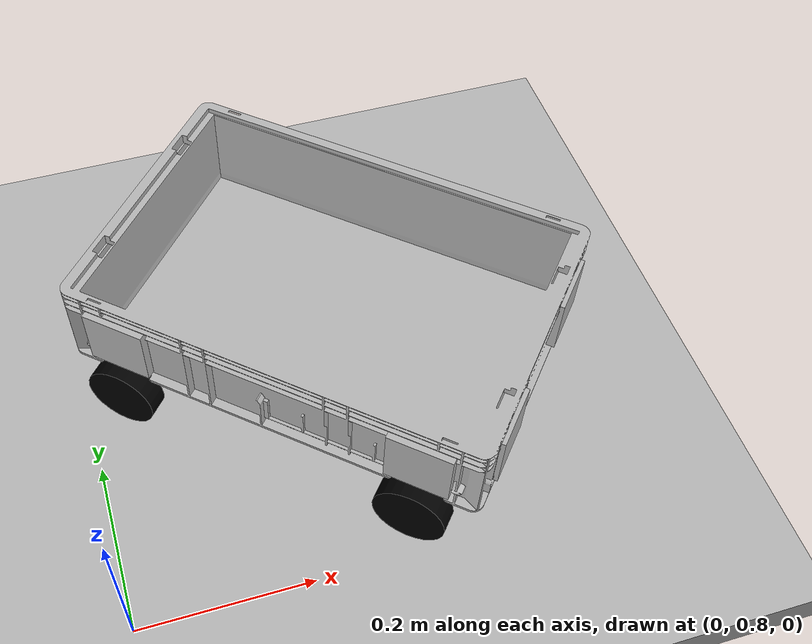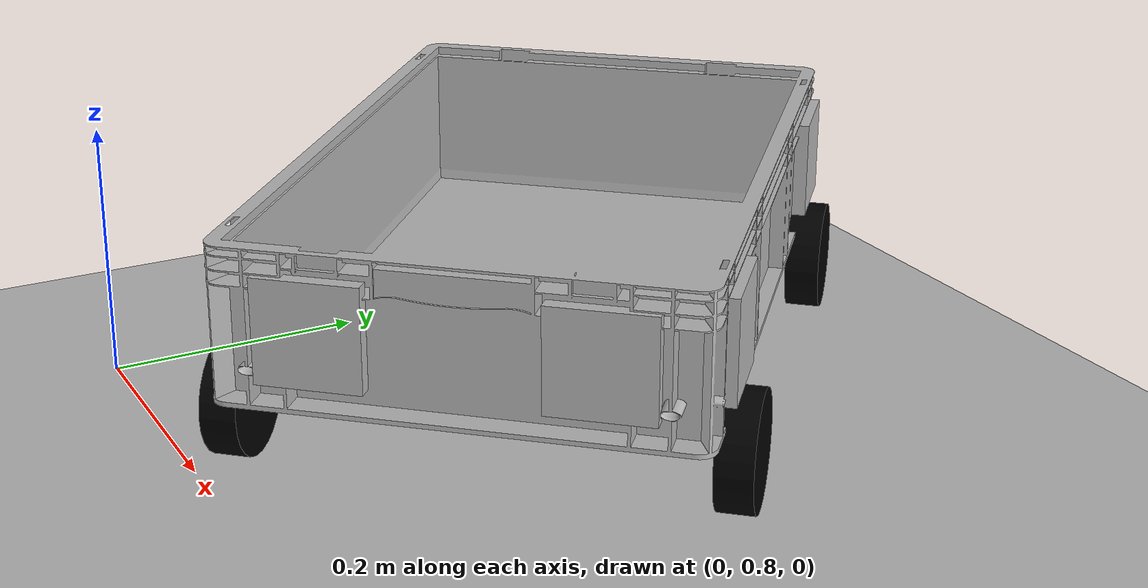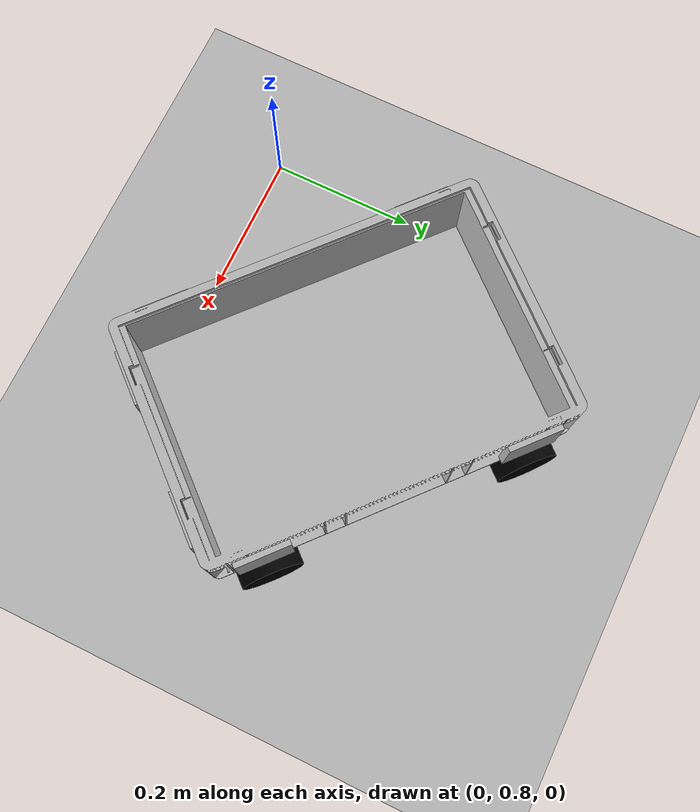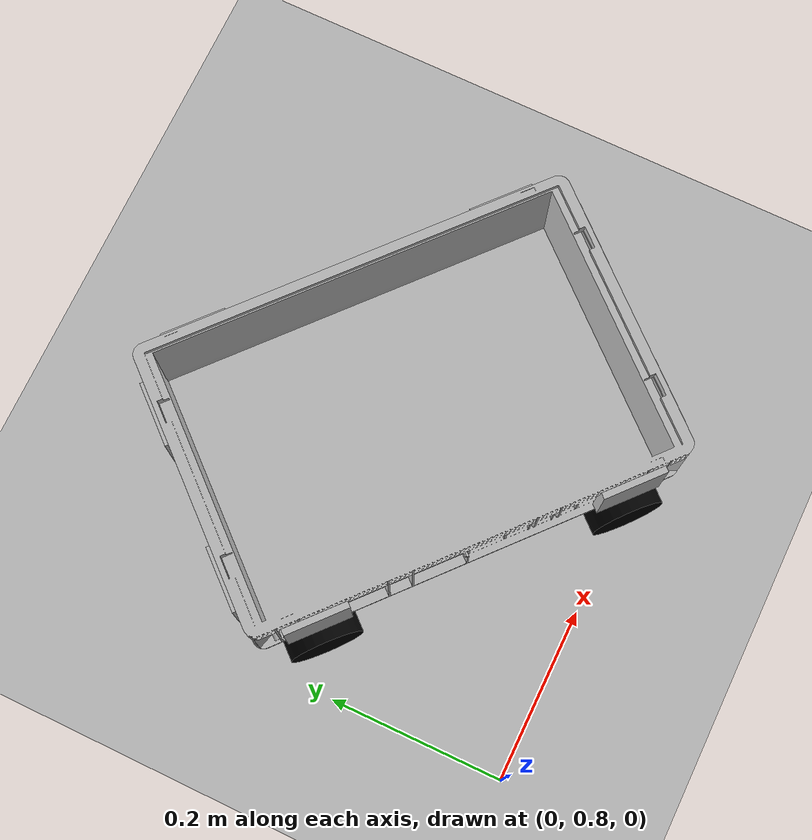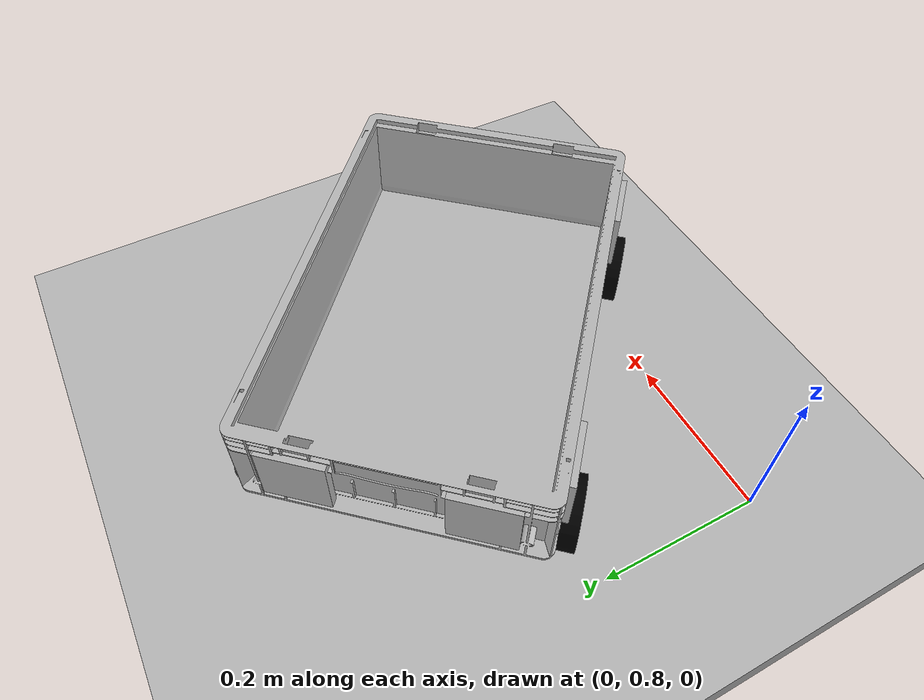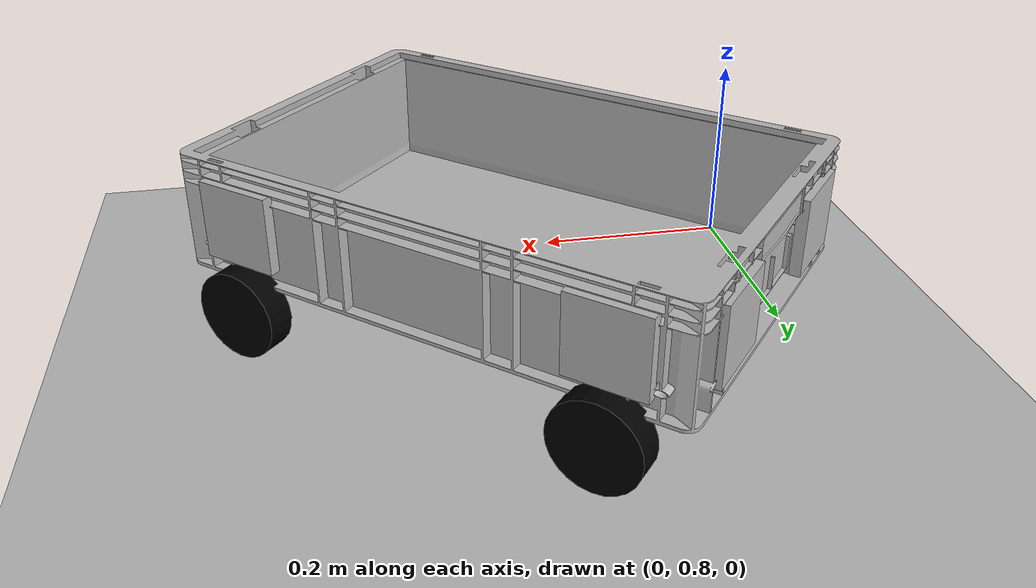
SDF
<sdf version="1.7">
 <world name="default">
  <light name="sun" type="directional">
   <pose>0 0 10 0 -0 0</pose>
   <diffuse>0.8 0.8 0.8 1</diffuse>
   <specular>0.2 0.2 0.2 1</specular>
   <attenuation>
    <range>1000</range>
    <constant>0.9</constant>
    <linear>0.01</linear>
    <quadratic>0.001</quadratic>
   </attenuation>
   <direction>-0.5 0.1 -0.9</direction>
   <spot><inner_angle>0</inner_angle><outer_angle>0</outer_angle><falloff>0</falloff></spot>
  </light>
  <model name="ground_plane">
   <static>1</static>
   <link name="link">
    <collision name="collision">
     <geometry><plane><normal>0 0 1</normal><size>100 100</size></plane></geometry>
     <surface><friction><ode><mu>100</mu><mu2>50</mu2></ode></friction></surface>
    </collision>
    <visual name="visual">
     <cast_shadows>0</cast_shadows>
     <geometry><plane><normal>0 0 1</normal><size>100 100</size></plane></geometry>
     <material>
      <script><uri>file://media/materials/scripts/gazebo.material</uri><name>Gazebo/Grey</name></script>
     </material>
    </visual>
   </link>
  </model>
  <gravity>0 0 -9.8</gravity>
  <magnetic_field>6e-06 2.3e-05 -4.2e-05</magnetic_field>
  <atmosphere type="adiabatic"/>
  <physics type="ode">
   <max_step_size>0.001</max_step_size>
   <real_time_factor>1</real_time_factor>
   <real_time_update_rate>1000</real_time_update_rate>
  </physics>
  <scene><ambient>0.4 0.4 0.4 1</ambient><background>0.7 0.7 0.7 1</background><shadows>1</shadows></scene>
  <audio><device>default</device></audio>
  <spherical_coordinates>
   <surface_model>EARTH_WGS84</surface_model>
   <latitude_deg>0</latitude_deg>
   <longitude_deg>0</longitude_deg>
   <elevation>0</elevation>
   <heading_deg>0</heading_deg>
  </spherical_coordinates>
  <model name="klt_world">
   <model name="bots_bento_arena">
    <static>1</static>
    <link name="link">
     <collision name="collision">
      <geometry><box><size>6 5 0.05</size><normal>0 0 1</normal><scale>1 1 1</scale></box></geometry>
      <surface><friction><ode><mu>100</mu><mu2>50</mu2></ode></friction></surface>
     </collision>
     <visual name="visual">
      <cast_shadows>0</cast_shadows>
      <geometry><box><size>6 5 0.05</size><normal>0 0 1</normal><scale>1 1 1</scale></box></geometry>
      <material>
       <script>
        <uri>model://bots_bento_arena/materials/scripts/bots_bento_arena.material</uri>
        <uri>model://bots_bento_arena/materials/textures/</uri>
        <name>bots_bento_arena/Image</name>
       </script>
      </material>
     </visual>
    </link>
   </model>
   <static>0</static>
   <pose>-0.056218 0.056252 0 0 -0 0</pose>
  </model>
  <model name="klt_model">
   <static>0</static>
   <link name="klt_link">
    <collision name="collision">
     <geometry>
      <mesh><uri>model://klt_model/meshes/RL-KLT_6280.stl</uri><scale>0.0008 0.0008 0.0004</scale></mesh>
     </geometry>
    </collision>
    <visual name="visual">
     <geometry>
      <mesh><uri>model://klt_model/meshes/RL-KLT_6280.stl</uri><scale>0.0008 0.0008 0.0004</scale></mesh>
     </geometry>
    </visual>
    <inertial>
     <inertia><ixx>1</ixx><ixy>0</ixy><ixz>0</ixz><iyy>1</iyy><iyz>0</iyz><izz>1</izz></inertia>
     <mass>1</mass>
    </inertial>
   </link>
   <link name="wheel1">
    <pose>0.17 0.165 -0.019 1.5707 -0 0</pose>
    <collision name="collision">
     <geometry><cylinder><radius>0.08</radius><length>0.04</length></cylinder></geometry>
    </collision>
    <visual name="visual">
     <geometry><cylinder><radius>0.04</radius><length>0.025</length></cylinder></geometry>
     <material>
      <ambient>0 0 0 1</ambient>
      <diffuse>0 0 0 1</diffuse>
      <specular>0 0 0 1</specular>
      <emissive>0 0 0 1</emissive>
     </material>
    </visual>
    <inertial>
     <inertia><ixx>1</ixx><ixy>0</ixy><ixz>0</ixz><iyy>1</iyy><iyz>0</iyz><izz>1</izz></inertia>
     <mass>1</mass>
    </inertial>
   </link>
   <joint name="klt_wheel_1" type="fixed">
    <pose>0.17 0.165 -0.019 1.5707 -0 0</pose>
    <parent>klt_link</parent>
    <child>wheel1</child>
    <axis><xyz>0 0 1</xyz><limit><lower>-1e+16</lower><upper>1e+16</upper></limit></axis>
   </joint>
   <link name="wheel2">
    <pose>0.17 -0.165 -0.019 1.5707 -0 0</pose>
    <collision name="collision">
     <geometry><cylinder><radius>0.08</radius><length>0.04</length></cylinder></geometry>
    </collision>
    <visual name="visual">
     <geometry><cylinder><radius>0.04</radius><length>0.025</length></cylinder></geometry>
     <material>
      <ambient>0 0 0 1</ambient>
      <diffuse>0 0 0 1</diffuse>
      <specular>0 0 0 1</specular>
      <emissive>0 0 0 1</emissive>
     </material>
    </visual>
    <inertial>
     <inertia><ixx>1</ixx><ixy>0</ixy><ixz>0</ixz><iyy>1</iyy><iyz>0</iyz><izz>1</izz></inertia>
     <mass>1</mass>
    </inertial>
   </link>
   <joint name="klt_wheel_2" type="fixed">
    <pose>0.17 -0.165 -0.019 1.5707 -0 0</pose>
    <parent>klt_link</parent>
    <child>wheel2</child>
    <axis><xyz>0 0 1</xyz><limit><lower>-1e+16</lower><upper>1e+16</upper></limit></axis>
   </joint>
   <link name="wheel3">
    <pose>-0.17 0.165 -0.019 1.5707 -0 0</pose>
    <collision name="collision">
     <geometry><cylinder><radius>0.08</radius><length>0.04</length></cylinder></geometry>
    </collision>
    <visual name="visual">
     <geometry><cylinder><radius>0.04</radius><length>0.025</length></cylinder></geometry>
     <material>
      <ambient>0 0 0 1</ambient>
      <diffuse>0 0 0 1</diffuse>
      <specular>0 0 0 1</specular>
      <emissive>0 0 0 1</emissive>
     </material>
    </visual>
    <inertial>
     <inertia><ixx>1</ixx><ixy>0</ixy><ixz>0</ixz><iyy>1</iyy><iyz>0</iyz><izz>1</izz></inertia>
     <mass>1</mass>
    </inertial>
   </link>
   <joint name="klt_wheel_3" type="fixed">
    <pose>-0.17 0.165 -0.019 1.5707 -0 0</pose>
    <parent>klt_link</parent>
    <child>wheel3</child>
    <axis><xyz>0 0 1</xyz><limit><lower>-1e+16</lower><upper>1e+16</upper></limit></axis>
   </joint>
   <link name="wheel4">
    <pose>-0.17 -0.165 -0.019 1.5707 -0 0</pose>
    <collision name="collision">
     <geometry><cylinder><radius>0.08</radius><length>0.04</length></cylinder></geometry>
    </collision>
    <visual name="visual">
     <geometry><cylinder><radius>0.04</radius><length>0.025</length></cylinder></geometry>
     <material>
      <ambient>0 0 0 1</ambient>
      <diffuse>0 0 0 1</diffuse>
      <specular>0 0 0 1</specular>
      <emissive>0 0 0 1</emissive>
     </material>
    </visual>
    <inertial>
     <inertia><ixx>1</ixx><ixy>0</ixy><ixz>0</ixz><iyy>1</iyy><iyz>0</iyz><izz>1</izz></inertia>
     <mass>1</mass>
    </inertial>
   </link>
   <joint name="klt_wheel_4" type="fixed">
    <pose>-0.17 -0.165 -0.019 1.5707 -0 0</pose>
    <parent>klt_link</parent>
    <child>wheel4</child>
    <axis><xyz>0 0 1</xyz><limit><lower>-1e+16</lower><upper>1e+16</upper></limit></axis>
   </joint>
   <link name="april_1">
    <pose>-0.17 -0.16 0.06 1.5707 -0 0</pose>
    <collision name="collision"><geometry><box><size>0 0 0</size></box></geometry></collision>
    <visual name="visual">
     <cast_shadows>0</cast_shadows>
     <geometry><box><size>0.07 0.07 0.01</size></box></geometry>
     <material>
      <script>
       <uri>model://klt_model/materials/scripts</uri>
       <uri>model://klt_model/materials/textures</uri>
       <name>april_tag</name>
      </script>
     </material>
    </visual>
    <inertial>
     <inertia><ixx>1</ixx><ixy>0</ixy><ixz>0</ixz><iyy>1</iyy><iyz>0</iyz><izz>1</izz></inertia>
     <mass>1</mass>
    </inertial>
   </link>
   <joint name="april_1_jnt" type="fixed">
    <pose>-0.17 -0.16 0.06 1.5707 -0 0</pose>
    <parent>klt_link</parent>
    <child>april_1</child>
    <axis><xyz>0 0 1</xyz><limit><lower>-1e+16</lower><upper>1e+16</upper></limit></axis>
   </joint>
   <link name="april_2">
    <pose>-0.17 0.16 0.06 1.5707 -0 0</pose>
    <collision name="collision"><geometry><box><size>0 0 0</size></box></geometry></collision>
    <visual name="visual">
     <cast_shadows>0</cast_shadows>
     <geometry><box><size>0.07 0.07 0.01</size></box></geometry>
     <material>
      <script>
       <uri>model://klt_model/materials/scripts</uri>
       <uri>model://klt_model/materials/textures</uri>
       <name>april_tag</name>
      </script>
     </material>
    </visual>
    <inertial>
     <inertia><ixx>1</ixx><ixy>0</ixy><ixz>0</ixz><iyy>1</iyy><iyz>0</iyz><izz>1</izz></inertia>
     <mass>1</mass>
    </inertial>
   </link>
   <joint name="april_2_jnt" type="fixed">
    <pose>-0.17 0.16 0.06 1.5707 -0 0</pose>
    <parent>klt_link</parent>
    <child>april_2</child>
    <axis><xyz>0 0 1</xyz><limit><lower>-1e+16</lower><upper>1e+16</upper></limit></axis>
   </joint>
   <link name="april_3">
    <pose>0.17 0.16 0.06 1.5707 -0 0</pose>
    <collision name="collision"><geometry><box><size>0 0 0</size></box></geometry></collision>
    <visual name="visual">
     <cast_shadows>0</cast_shadows>
     <geometry><box><size>0.07 0.07 0.01</size></box></geometry>
     <material>
      <script>
       <uri>model://klt_model/materials/scripts</uri>
       <uri>model://klt_model/materials/textures</uri>
       <name>april_tag</name>
      </script>
     </material>
    </visual>
    <inertial>
     <inertia><ixx>1</ixx><ixy>0</ixy><ixz>0</ixz><iyy>1</iyy><iyz>0</iyz><izz>1</izz></inertia>
     <mass>1</mass>
    </inertial>
   </link>
   <joint name="april_3_jnt" type="fixed">
    <pose>0.17 0.16 0.06 1.5707 -0 0</pose>
    <parent>klt_link</parent>
    <child>april_3</child>
    <axis><xyz>0 0 1</xyz><limit><lower>-1e+16</lower><upper>1e+16</upper></limit></axis>
   </joint>
   <link name="april_4">
    <pose>0.17 -0.16 0.06 1.5707 -0 0</pose>
    <collision name="collision"><geometry><box><size>0 0 0</size></box></geometry></collision>
    <visual name="visual">
     <cast_shadows>0</cast_shadows>
     <geometry><box><size>0.07 0.07 0.01</size></box></geometry>
     <material>
      <script>
       <uri>model://klt_model/materials/scripts</uri>
       <uri>model://klt_model/materials/textures</uri>
       <name>april_tag</name>
      </script>
     </material>
    </visual>
    <inertial>
     <inertia><ixx>1</ixx><ixy>0</ixy><ixz>0</ixz><iyy>1</iyy><iyz>0</iyz><izz>1</izz></inertia>
     <mass>1</mass>
    </inertial>
   </link>
   <joint name="april_4_jnt" type="fixed">
    <pose>0.17 -0.16 0.06 1.5707 -0 0</pose>
    <parent>klt_link</parent>
    <child>april_4</child>
    <axis><xyz>0 0 1</xyz><limit><lower>-1e+16</lower><upper>1e+16</upper></limit></axis>
   </joint>
   <link name="april_5">
    <pose>0.237 -0.09 0.06 1.5707 0 1.5707</pose>
    <collision name="collision"><geometry><box><size>0 0 0</size></box></geometry></collision>
    <visual name="visual">
     <cast_shadows>0</cast_shadows>
     <geometry><box><size>0.07 0.07 0.01</size></box></geometry>
     <material>
      <script>
       <uri>model://klt_model/materials/scripts</uri>
       <uri>model://klt_model/materials/textures</uri>
       <name>april_tag</name>
      </script>
     </material>
    </visual>
    <inertial>
     <inertia><ixx>1</ixx><ixy>0</ixy><ixz>0</ixz><iyy>1</iyy><iyz>0</iyz><izz>1</izz></inertia>
     <mass>1</mass>
    </inertial>
   </link>
   <joint name="april_5_jnt" type="fixed">
    <pose>0.237 -0.09 0.06 1.5707 0 1.5707</pose>
    <parent>klt_link</parent>
    <child>april_5</child>
    <axis><xyz>0 0 1</xyz><limit><lower>-1e+16</lower><upper>1e+16</upper></limit></axis>
   </joint>
   <link name="april_6">
    <pose>-0.237 -0.09 0.06 1.5707 0 1.5707</pose>
    <collision name="collision"><geometry><box><size>0 0 0</size></box></geometry></collision>
    <visual name="visual">
     <cast_shadows>0</cast_shadows>
     <geometry><box><size>0.07 0.07 0.01</size></box></geometry>
     <material>
      <script>
       <uri>model://klt_model/materials/scripts</uri>
       <uri>model://klt_model/materials/textures</uri>
       <name>april_tag</name>
      </script>
     </material>
    </visual>
    <inertial>
     <inertia><ixx>1</ixx><ixy>0</ixy><ixz>0</ixz><iyy>1</iyy><iyz>0</iyz><izz>1</izz></inertia>
     <mass>1</mass>
    </inertial>
   </link>
   <joint name="april_6_jnt" type="fixed">
    <pose>-0.237 -0.09 0.06 1.5707 0 1.5707</pose>
    <parent>klt_link</parent>
    <child>april_6</child>
    <axis><xyz>0 0 1</xyz><limit><lower>-1e+16</lower><upper>1e+16</upper></limit></axis>
   </joint>
   <link name="april_7">
    <pose>0.237 0.09 0.06 1.5707 0 1.5707</pose>
    <collision name="collision"><geometry><box><size>0 0 0</size></box></geometry></collision>
    <visual name="visual">
     <cast_shadows>0</cast_shadows>
     <geometry><box><size>0.07 0.07 0.01</size></box></geometry>
     <material>
      <script>
       <uri>model://klt_model/materials/scripts</uri>
       <uri>model://klt_model/materials/textures</uri>
       <name>april_tag</name>
      </script>
     </material>
    </visual>
    <inertial>
     <inertia><ixx>1</ixx><ixy>0</ixy><ixz>0</ixz><iyy>1</iyy><iyz>0</iyz><izz>1</izz></inertia>
     <mass>1</mass>
    </inertial>
   </link>
   <joint name="april_7_jnt" type="fixed">
    <pose>0.237 0.09 0.06 1.5707 0 1.5707</pose>
    <parent>klt_link</parent>
    <child>april_7</child>
    <axis><xyz>0 0 1</xyz><limit><lower>-1e+16</lower><upper>1e+16</upper></limit></axis>
   </joint>
   <link name="april_8">
    <pose>-0.237 0.09 0.06 1.5707 0 1.5707</pose>
    <collision name="collision"><geometry><box><size>0 0 0</size></box></geometry></collision>
    <visual name="visual">
     <cast_shadows>0</cast_shadows>
     <geometry><box><size>0.07 0.07 0.01</size></box></geometry>
     <material>
      <script>
       <uri>model://klt_model/materials/scripts</uri>
       <uri>model://klt_model/materials/textures</uri>
       <name>april_tag</name>
      </script>
     </material>
    </visual>
    <inertial>
     <inertia><ixx>1</ixx><ixy>0</ixy><ixz>0</ixz><iyy>1</iyy><iyz>0</iyz><izz>1</izz></inertia>
     <mass>1</mass>
    </inertial>
   </link>
   <joint name="april_8_jnt" type="fixed">
    <pose>-0.237 0.09 0.06 1.5707 0 1.5707</pose>
    <parent>klt_link</parent>
    <child>april_8</child>
    <axis><xyz>0 0 1</xyz><limit><lower>-1e+16</lower><upper>1e+16</upper></limit></axis>
   </joint>
   <pose>0.285932 1.04108 0.124003 -6e-06 8e-06 -0.722634</pose>
  </model>
 </world>
</sdf>
